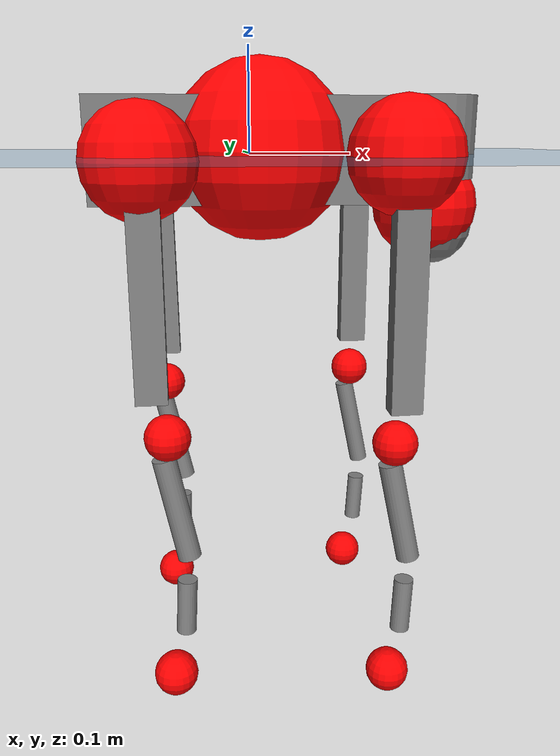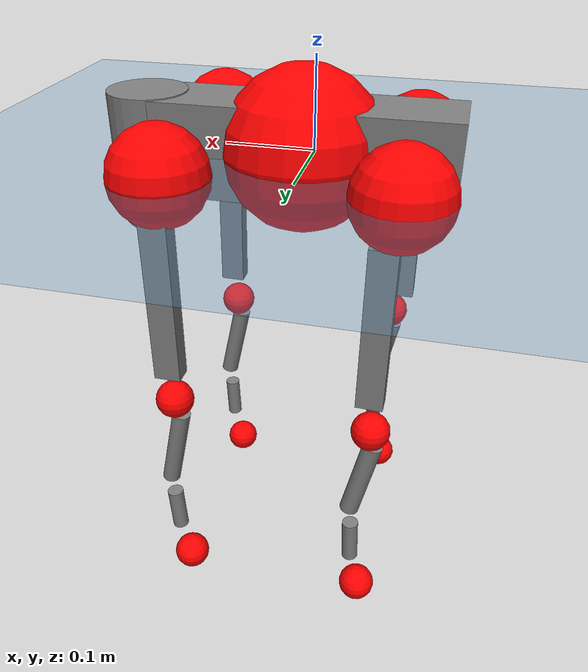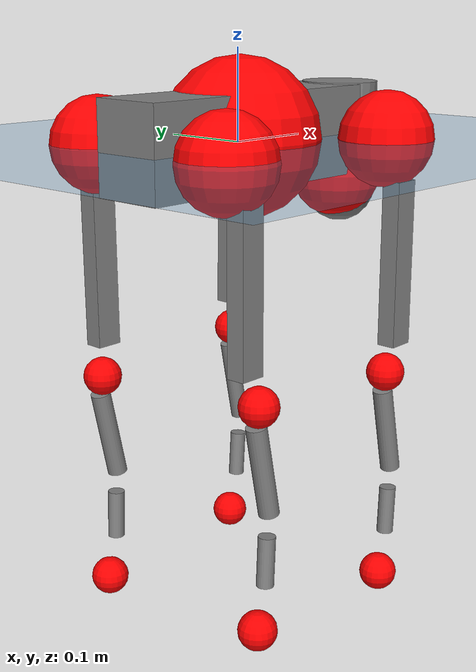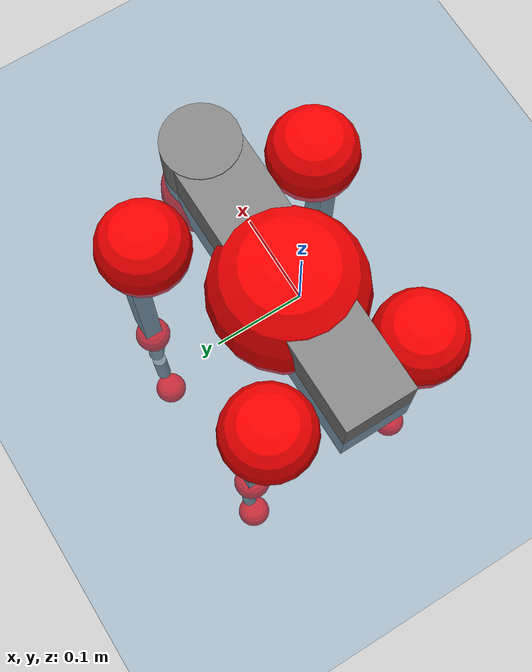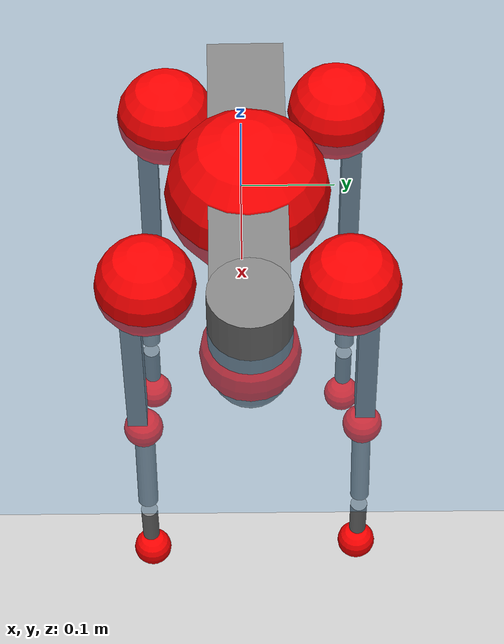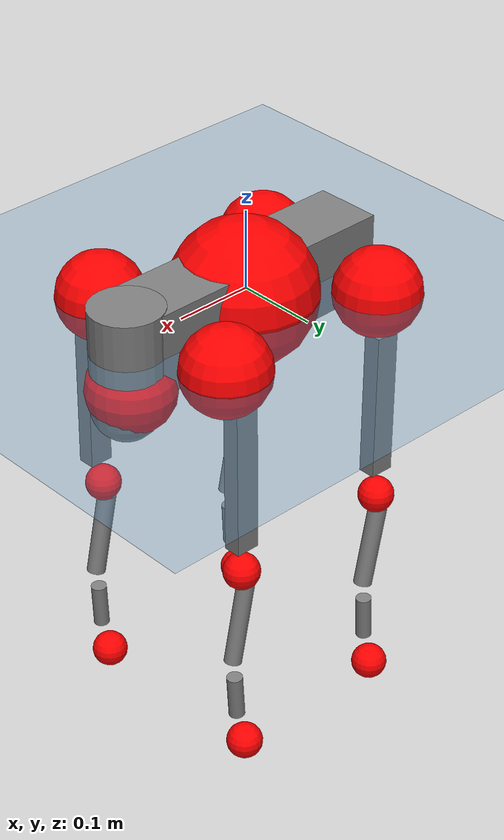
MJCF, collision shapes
<mujoco model="go2">
  <compiler angle="radian" assetdir="assets" balanceinertia="true" inertiafromgeom="false"/>

  <option timestep="0.005" density="1.2" viscosity="2e-05"/>

  <size nkey="1"/>

  <visual>
    <quality shadowsize="8192"/>
    <map shadowclip="0.5"/>
  </visual>

  <default>
    <default class="/">
      <geom contype="0" conaffinity="0" group="1" solref="-1000 -80"/>
      <site size="0.01 0.005 0.005" group="5"/>
      <general forcelimited="true" biastype="affine" gainprm="20" biasprm="0 -20 -0.5"/>
      <default class="go2">
        <joint armature="0.01" damping="0.01" frictionloss="0.2"/>
        <geom condim="1" margin="0.001"/>
        <default class="visual">
          <geom type="mesh" group="2"/>
        </default>
        <default class="collision">
          <geom group="3"/>
          <default class="foot">
            <geom size="0.022 0 0" condim="6" priority="1" friction="0.8 0.02 0.01" solimp="0.015 1 0.022"/>
          </default>
        </default>
        <default class="reward_collision_sphere">
          <geom group="5" rgba="1 0 0 1"/>
        </default>
      </default>
    </default>
  </default>

  <asset>
    <texture type="skybox" colorspace="auto" name="//unnamed_texture_0" builtin="gradient" rgb1="0.95 0.95 0.95" rgb2="0.95 0.95 0.95" width="100" height="600"/>
    <texture type="2d" colorspace="auto" name="texplane" builtin="checker" rgb1="0.345 0.575 0.748" rgb2="0.345 0.575 0.748" markrgb="1 1 1" width="512" height="512"/>
    <material name="MatPlane" class="/" texture="texplane" texuniform="true" texrepeat="2 2" specular="0.9"/>
    <material name="metal" class="/" rgba="0.9 0.95 0.95 1"/>
    <material name="black" class="/" rgba="0 0 0 1"/>
    <material name="white" class="/"/>
    <material name="gray" class="/" rgba="0.671705 0.692426 0.77427 1"/>
    <mesh name="base_0" class="/" file="base_0.obj"/>
    <mesh name="base_1" class="/" file="base_1.obj"/>
    <mesh name="base_2" class="/" file="base_2.obj"/>
    <mesh name="base_3" class="/" file="base_3.obj"/>
    <mesh name="base_4" class="/" file="base_4.obj"/>
    <mesh name="hip_0" class="/" file="hip_0.obj"/>
    <mesh name="hip_1" class="/" file="hip_1.obj"/>
    <mesh name="thigh_0" class="/" file="thigh_0.obj"/>
    <mesh name="thigh_1" class="/" file="thigh_1.obj"/>
    <mesh name="thigh_mirror_0" class="/" file="thigh_mirror_0.obj"/>
    <mesh name="thigh_mirror_1" class="/" file="thigh_mirror_1.obj"/>
    <mesh name="calf_0" class="/" file="calf_0.obj"/>
    <mesh name="calf_1" class="/" file="calf_1.obj"/>
    <mesh name="calf_mirror_0" class="/" file="calf_mirror_0.obj"/>
    <mesh name="calf_mirror_1" class="/" file="calf_mirror_1.obj"/>
    <mesh name="foot" class="/" file="foot.obj"/>
  </asset>

  <worldbody>
    <geom name="floor" class="/" size="100 100 0.125" type="plane" group="0" material="MatPlane"/>
    <light name="toplight_shadow" class="/" pos="0 0 5" dir="0.0990148 0.0990148 -0.990148" type="directional" ambient="0.04 0.04 0.04" diffuse="0.55 0.55 0.55" specular="0.12 0.12 0.12"/>
    <light name="toplight_fill" class="/" pos="0 0 5" dir="0.0990148 0.0990148 -0.990148" type="directional" castshadow="false" ambient="0.04 0.04 0.04" diffuse="0.3 0.3 0.3" specular="0.08 0.08 0.08"/>
    <body name="trunk" childclass="go2" pos="0.0109813 0.00682597 0.00300447" quat="0.999991 0.00309785 0.000185254 0.00280641">
      <inertial pos="0.024537 -0.000665846 -0.00755648" quat="-0.0109214 0.716608 0.00725845 0.697353" mass="4.7084" diaginertia="0.00898632 0.0436695 0.0565786"/>
      <joint name="//unnamed_joint_0" type="free" armature="0" damping="0" frictionloss="0"/>
      <geom name="//unnamed_geom_1" class="visual" material="black" mesh="base_0"/>
      <geom name="//unnamed_geom_2" class="visual" material="black" mesh="base_1"/>
      <geom name="//unnamed_geom_3" class="visual" material="black" mesh="base_2"/>
      <geom name="//unnamed_geom_4" class="visual" material="white" mesh="base_3"/>
      <geom name="//unnamed_geom_5" class="visual" material="gray" mesh="base_4"/>
      <geom name="trunk_1" class="collision" size="0.168032 0.0417624 0.0509189" type="box"/>
      <geom name="trunk_2" class="collision" size="0.0446657 0.0401991" pos="0.173727 0 0.0121827" type="cylinder"/>
      <geom name="trunk_3" class="collision" size="0.0419857" pos="0.178604 0 -0.0730962"/>
      <geom name="//unnamed_geom_9" class="reward_collision_sphere" size="0.0893313"/>
      <geom name="//unnamed_geom_10" class="reward_collision_sphere" size="0.0535988" pos="0.17068 0 -0.0548222"/>
      <site name="imu" pos="-0.00758777 -0.013274 0.0590183" size="0.00893313"/>
      <camera name="track" pos="0 -1.7042 0" quat="0.707107 0.707107 0 0" mode="trackcom"/>
      <camera name="ego_camera" pos="0.190186 0 0.0548222" quat="-0.5 -0.5 0.5 0.5"/>
      <body name="FL_hip" pos="0.123626 0.0455737 -0.00322309" quat="0.999985 0.00263127 -6.56538e-05 -0.00480783">
        <inertial pos="0.0086162 0.00634702 0.00464556" quat="0.494446 0.494948 0.508344 0.502131" mass="0.424573" diaginertia="6.56747e-05 0.000267079 0.00106801"/>
        <joint name="FL_hip_joint" pos="0 0 0" axis="0.999998 -0.000545803 -0.00185803" stiffness="0.0208904" range="-1.07028 1.23067" armature="0.0055066" damping="0.039137" frictionloss="0.148435"/>
        <geom name="//unnamed_geom_11" class="visual" material="metal" mesh="hip_0"/>
        <geom name="//unnamed_geom_12" class="visual" material="gray" mesh="hip_1"/>
        <geom name="//unnamed_geom_13" class="collision" size="0.0410924 0.0178663" pos="0 0.068168 0" quat="0.707107 0.707107 0 0" type="cylinder"/>
        <geom name="//unnamed_geom_14" class="reward_collision_sphere" size="0.0535988" pos="0 0.059647 0"/>
        <body name="FL_thigh" pos="-0.00130611 0.080484 -0.00279104" quat="0.999999 0.000683858 -0.00066853 0.000310988">
          <inertial pos="-0.013208 -0.0180942 -0.0495581" quat="0.828112 0.0883324 -0.0156035 0.55334" mass="0.847644" diaginertia="0.000502993 0.00262089 0.00248539"/>
          <joint name="FL_thigh_joint" pos="0 0 0" axis="-0.0209014 0.999722 0.0109046" range="-1.4018 3.33596" armature="0.00555315" damping="0.0621597" frictionloss="0.14024"/>
          <geom name="//unnamed_geom_15" class="visual" material="metal" mesh="thigh_0"/>
          <geom name="//unnamed_geom_16" class="visual" material="gray" mesh="thigh_1"/>
          <geom name="//unnamed_geom_17" class="collision" size="0.0951379 0.0109431 0.0151863" pos="0 0 -0.129746" quat="0.707107 0 0.707107 0" type="box"/>
          <body name="FL_calf" pos="-0.00133097 -0.00169787 -0.260833" quat="0.999995 -0.000775323 0.00287719 0.000794817">
            <inertial pos="-0.0016079 -0.0051507 -0.164829" quat="0.71247 -0.0289545 0.0316451 0.70039" mass="0.167541" diaginertia="0.00012803 0.000617127 0.000152973"/>
            <joint name="FL_calf_joint" pos="0 0 0" axis="-0.0115842 0.999901 -0.0079505" stiffness="0.0049947" range="-2.74741 -0.661425" armature="0.0113713" damping="0.00299445" frictionloss="0.175494"/>
            <geom name="//unnamed_geom_18" class="visual" material="gray" mesh="calf_0"/>
            <geom name="//unnamed_geom_19" class="visual" material="black" mesh="calf_1"/>
            <geom name="FL_calf0" class="collision" size="0.0107198 0.0535988" pos="0.00487656 0 -0.0730962" quat="0.994493 0 -0.104807 0" type="cylinder"/>
            <geom name="//unnamed_geom_21" class="collision" size="0.00982645 0.0290327" pos="0.0121914 0 -0.180304" quat="0.999688 0 0.0249974 0" type="cylinder"/>
            <geom name="//unnamed_geom_22" class="visual" pos="0 0 -0.259492" quat="1 0 0 0" material="black" mesh="foot"/>
            <geom name="FL_foot" class="foot" size="0.0191375" pos="-0.00121914 0 -0.259492"/>
            <geom name="//unnamed_geom_24" class="reward_collision_sphere" size="0.0223328"/>
            <geom name="//unnamed_geom_25" class="reward_collision_sphere" size="0.0223328" pos="-0.00121914 0 -0.259492"/>
            <site name="FL_foot" class="foot" pos="-0.00121914 0 -0.259492" size="0.00893313"/>
          </body>
        </body>
      </body>
      <body name="FR_hip" pos="0.120873 -0.0486289 -0.00223983" quat="0.999998 0.00109465 -0.00147543 0.000610118">
        <inertial pos="-0.0113689 -0.00306552 -0.000456068" quat="0.495753 0.505757 0.505052 0.493316" mass="0.370491" diaginertia="6.80035e-05 0.000247357 0.00126717"/>
        <joint name="FR_hip_joint" pos="0 0 0" axis="0.999981 0.00285373 0.00537373" stiffness="0.0529981" range="-1.15073 1.06261" armature="0.0140119" damping="0.00155413" frictionloss="0.0787804"/>
        <geom name="//unnamed_geom_26" class="visual" pos="0 -3.18992e-09 -1.36822e-07" quat="4.63268e-05 1 0 0" material="metal" mesh="hip_0"/>
        <geom name="//unnamed_geom_27" class="visual" pos="0 -5.17124e-09 3.38414e-07" quat="4.63268e-05 1 0 0" material="gray" mesh="hip_1"/>
        <geom name="//unnamed_geom_28" class="collision" size="0.0410924 0.0178663" pos="0 -0.068168 0" quat="0.707107 0.707107 0 0" type="cylinder"/>
        <geom name="//unnamed_geom_29" class="reward_collision_sphere" size="0.0535988" pos="0 -0.059647 0"/>
        <body name="FR_thigh" pos="0.001469 -0.0781681 -0.00973099" quat="0.999986 -0.000254568 -0.00518873 0.00100151">
          <inertial pos="0.0048788 0.0307094 -0.0381753" quat="0.551657 -0.0217611 0.084365 0.829508" mass="0.975923" diaginertia="0.000526717 0.00283178 0.00268786"/>
          <joint name="FR_thigh_joint" pos="0 0 0" axis="0.000288166 -1 0.000545055" range="-3.45382 1.62598" armature="0.00926589" damping="0" frictionloss="0.147899"/>
          <geom name="//unnamed_geom_30" class="visual" material="metal" mesh="thigh_mirror_0"/>
          <geom name="//unnamed_geom_31" class="visual" material="gray" mesh="thigh_mirror_1"/>
          <geom name="//unnamed_geom_32" class="collision" size="0.0951379 0.0109431 0.0151863" pos="0 0 -0.129746" quat="0.707107 0 0.707107 0" type="box"/>
          <body name="FR_calf" pos="-0.00628439 0.00506969 -0.259135" quat="1 4.96081e-05 -0.000166494 -0.00027835">
            <inertial pos="-0.000805895 0.000459586 -0.170831" quat="0.703639 -0.00608496 0.00176804 0.71053" mass="0.150916" diaginertia="9.93487e-05 0.000639312 0.000129682"/>
            <joint name="FR_calf_joint" pos="0 0 0" axis="-0.0176276 -0.999135 -0.0376558" stiffness="0.0261422" range="0.851427 2.71002" armature="0.00948058" damping="0" frictionloss="0.167842"/>
            <geom name="//unnamed_geom_33" class="visual" material="gray" mesh="calf_mirror_0"/>
            <geom name="//unnamed_geom_34" class="visual" material="black" mesh="calf_mirror_1"/>
            <geom name="FR_calf0" class="collision" size="0.0116131 0.0535988" pos="0.0060957 0 -0.0730962" quat="0.995004 0 -0.0998334 0" type="cylinder"/>
            <geom name="//unnamed_geom_36" class="collision" size="0.00982645 0.0290327" pos="0.0121914 0 -0.180304" quat="0.999688 0 0.0249974 0" type="cylinder"/>
            <geom name="//unnamed_geom_37" class="visual" pos="0 0 -0.259492" quat="1 0 0 0" material="black" mesh="foot"/>
            <geom name="FR_foot" class="foot" size="0.0167887" pos="-0.00121914 0 -0.259492"/>
            <geom name="//unnamed_geom_39" class="reward_collision_sphere" size="0.0223328"/>
            <geom name="//unnamed_geom_40" class="reward_collision_sphere" size="0.0223328" pos="-0.00121914 0 -0.259492"/>
            <site name="FR_foot" class="foot" pos="-0.00121914 0 -0.259492" size="0.00893313"/>
          </body>
        </body>
      </body>
      <body name="RL_hip" pos="-0.11799 0.0395203 -0.00520152" quat="0.99998 -0.00208531 -0.00470861 -0.00378705">
        <inertial pos="-0.00768081 0.00258613 0.000712517" quat="0.504798 0.497053 0.49876 0.499356" mass="0.486821" diaginertia="7.52863e-05 0.000247731 0.0013323"/>
        <joint name="RL_hip_joint" pos="0 0 0" axis="-0.999977 -0.000445148 -0.00678472" range="-1.04366 1.05488" armature="0.00865975" damping="0" frictionloss="0.152646"/>
        <geom name="//unnamed_geom_41" class="visual" pos="5.30274e-09 0 1.03946e-06" quat="4.63268e-05 0 1 0" material="metal" mesh="hip_0"/>
        <geom name="//unnamed_geom_42" class="visual" pos="8.59638e-09 0 9.21853e-07" quat="4.63268e-05 0 1 0" material="gray" mesh="hip_1"/>
        <geom name="//unnamed_geom_43" class="collision" size="0.0410924 0.0178663" pos="0 0.068168 0" quat="0.707107 0.707107 0 0" type="cylinder"/>
        <geom name="//unnamed_geom_44" class="reward_collision_sphere" size="0.0535988" pos="0 0.059647 0"/>
        <body name="RL_thigh" pos="0.0103261 0.0779112 -0.00717429" quat="0.999986 0.00340836 -0.00243006 -0.00319027">
          <inertial pos="-0.00413143 -0.0186887 -0.0396827" quat="0.820365 0.110771 -0.0574296 0.558062" mass="0.914979" diaginertia="0.000492373 0.00289687 0.00230048"/>
          <joint name="RL_thigh_joint" pos="0 0 0" axis="0.00346481 0.999929 -0.0113606" stiffness="0.00988714" range="-0.52738 4.47926" armature="0.0114721" damping="0.062336" frictionloss="0.200942"/>
          <geom name="//unnamed_geom_45" class="visual" material="metal" mesh="thigh_0"/>
          <geom name="//unnamed_geom_46" class="visual" material="gray" mesh="thigh_1"/>
          <geom name="//unnamed_geom_47" class="collision" size="0.0951379 0.0109431 0.0151863" pos="0 0 -0.129746" quat="0.707107 0 0.707107 0" type="box"/>
          <body name="RL_calf" pos="-0.00361867 3.82759e-05 -0.263634" quat="1 0.000328594 -0.000226296 0.000374385">
            <inertial pos="0.00409736 0.000439664 -0.177499" quat="0.711397 0.00320131 -0.00244949 0.702779" mass="0.171545" diaginertia="0.000125697 0.00068201 0.000142643"/>
            <joint name="RL_calf_joint" pos="0 0 0" axis="-0.0145332 0.999875 0.00620361" range="-2.69782 -0.835389" armature="0.0109624" damping="0.0541808" frictionloss="0.164144"/>
            <geom name="//unnamed_geom_48" class="visual" material="gray" mesh="calf_0"/>
            <geom name="//unnamed_geom_49" class="visual" material="black" mesh="calf_1"/>
            <geom name="RL_calf0" class="collision" size="0.0116131 0.0535988" pos="0.0060957 0 -0.0730962" quat="0.995004 0 -0.0998334 0" type="cylinder"/>
            <geom name="//unnamed_geom_51" class="collision" size="0.00982645 0.0290327" pos="0.0121914 0 -0.180304" quat="0.999688 0 0.0249974 0" type="cylinder"/>
            <geom name="//unnamed_geom_52" class="visual" pos="0 0 -0.259492" quat="1 0 0 0" material="black" mesh="foot"/>
            <geom name="RL_foot" class="foot" size="0.014811" pos="-0.00121914 0 -0.259492"/>
            <geom name="//unnamed_geom_54" class="reward_collision_sphere" size="0.0223328"/>
            <geom name="//unnamed_geom_55" class="reward_collision_sphere" size="0.0223328" pos="-0.00121914 0 -0.259492"/>
            <site name="RL_foot" class="foot" pos="-0.00121914 0 -0.259492" size="0.00893313"/>
          </body>
        </body>
      </body>
      <body name="RR_hip" pos="-0.115688 -0.0289974 -0.00800881" quat="0.999994 -0.00191379 -0.000833178 0.00277333">
        <inertial pos="0.00251838 -0.00978456 -0.000258067" quat="0.468958 0.476878 0.518341 0.532906" mass="0.471217" diaginertia="6.80593e-05 0.000242808 0.00131103"/>
        <joint name="RR_hip_joint" pos="0 0 0" axis="-1 0.000403127 0.000878136" range="-1.04757 1.04383" armature="0.00359442" damping="0" frictionloss="0.261441"/>
        <geom name="//unnamed_geom_56" class="visual" pos="-5.29435e-09 -3.18992e-09 1.17628e-06" quat="2.14617e-09 4.63268e-05 4.63268e-05 -1" material="metal" mesh="hip_0"/>
        <geom name="//unnamed_geom_57" class="visual" pos="-8.61715e-09 -5.17124e-09 5.83439e-07" quat="2.14617e-09 4.63268e-05 4.63268e-05 -1" material="gray" mesh="hip_1"/>
        <geom name="//unnamed_geom_58" class="collision" size="0.0410924 0.0178663" pos="0 -0.068168 0" quat="0.707107 0.707107 0 0" type="cylinder"/>
        <geom name="//unnamed_geom_59" class="reward_collision_sphere" size="0.0535988" pos="0 -0.059647 0"/>
        <body name="RR_thigh" pos="0.00295584 -0.0810176 0.00863295" quat="0.999998 -0.00167155 0.000747476 0.000600822">
          <inertial pos="-0.00284497 0.0231868 -0.038456" quat="0.552606 -0.014074 0.0858402 0.828891" mass="0.893547" diaginertia="0.000539573 0.00266892 0.00274332"/>
          <joint name="RR_thigh_joint" pos="0 0 0" axis="0.00273269 -0.998539 -0.0539639" stiffness="0.0325338" range="-4.33793 0.410505" armature="0.00689113" damping="0.0107839" frictionloss="0.190984"/>
          <geom name="//unnamed_geom_60" class="visual" material="metal" mesh="thigh_mirror_0"/>
          <geom name="//unnamed_geom_61" class="visual" material="gray" mesh="thigh_mirror_1"/>
          <geom name="//unnamed_geom_62" class="collision" size="0.0951379 0.0109431 0.0151863" pos="0 0 -0.129746" quat="0.707107 0 0.707107 0" type="box"/>
          <body name="RR_calf" pos="0.0131152 -0.00732517 -0.25843" quat="1 6.6999e-05 4.42904e-05 -0.000105083">
            <inertial pos="-0.00846697 -0.000822807 -0.177256" quat="0.701342 -0.00068557 0.015752 0.71265" mass="0.167288" diaginertia="0.000134337 0.000817975 0.000149823"/>
            <joint name="RR_calf_joint" pos="0 0 0" axis="0.000707611 -0.999998 0.00185719" stiffness="0.0024175" range="0.694291 2.47084" armature="0.0128508" damping="0.00938888" frictionloss="0.164764"/>
            <geom name="//unnamed_geom_63" class="visual" material="gray" mesh="calf_mirror_0"/>
            <geom name="//unnamed_geom_64" class="visual" material="black" mesh="calf_mirror_1"/>
            <geom name="RR_calf0" class="collision" size="0.0116131 0.0535988" pos="0.0060957 0 -0.0730962" quat="0.995004 0 -0.0998334 0" type="cylinder"/>
            <geom name="//unnamed_geom_66" class="collision" size="0.00982645 0.0290327" pos="0.0121914 0 -0.180304" quat="0.999688 0 0.0249974 0" type="cylinder"/>
            <geom name="//unnamed_geom_67" class="visual" pos="0 0 -0.259492" quat="1 0 0 0" material="black" mesh="foot"/>
            <geom name="RR_foot" class="foot" size="0.0189291" pos="-0.00121914 0 -0.259492"/>
            <geom name="//unnamed_geom_69" class="reward_collision_sphere" size="0.0223328"/>
            <geom name="//unnamed_geom_70" class="reward_collision_sphere" size="0.0223328" pos="-0.00121914 0 -0.259492"/>
            <site name="RR_foot" class="foot" pos="-0.00121914 0 -0.259492" size="0.00893313"/>
          </body>
        </body>
      </body>
    </body>
  </worldbody>

  <contact>
    <pair class="/" geom1="floor" geom2="FL_foot" name="//unnamed_contact_0"/>
    <pair class="/" geom1="floor" geom2="FR_foot" name="//unnamed_contact_1"/>
    <pair class="/" geom1="floor" geom2="RL_foot" name="//unnamed_contact_2"/>
    <pair class="/" geom1="floor" geom2="RR_foot" name="//unnamed_contact_3"/>
  </contact>

  <actuator>
    <general name="FL_hip" class="/" joint="FL_hip_joint" forcerange="-20.0258 20.0258" gainprm="17.8864" biasprm="0 -17.8864 -0.443755"/>
    <general name="FL_thigh" class="/" joint="FL_thigh_joint" forcerange="-24.8423 24.8423" gainprm="17.8864" biasprm="0 -17.8864 -0.443755"/>
    <general name="FL_calf" class="/" joint="FL_calf_joint" forcerange="-41.1074 41.1074" gainprm="17.8864" biasprm="0 -17.8864 -0.443755"/>
    <general name="FR_hip" class="/" joint="FR_hip_joint" forcerange="-11.6347 11.6347" gainprm="17.8864" biasprm="0 -17.8864 -0.443755"/>
    <general name="FR_thigh" class="/" joint="FR_thigh_joint" forcerange="-20.8172 20.8172" gainprm="17.8864" biasprm="0 -17.8864 -0.443755"/>
    <general name="FR_calf" class="/" joint="FR_calf_joint" forcerange="-51.9177 51.9177" gainprm="17.8864" biasprm="0 -17.8864 -0.443755"/>
    <general name="RL_hip" class="/" joint="RL_hip_joint" forcerange="-20.6527 20.6527" gainprm="17.8864" biasprm="0 -17.8864 -0.443755"/>
    <general name="RL_thigh" class="/" joint="RL_thigh_joint" forcerange="-20.7912 20.7912" gainprm="17.8864" biasprm="0 -17.8864 -0.443755"/>
    <general name="RL_calf" class="/" joint="RL_calf_joint" forcerange="-43.4936 43.4936" gainprm="17.8864" biasprm="0 -17.8864 -0.443755"/>
    <general name="RR_hip" class="/" joint="RR_hip_joint" forcerange="-21.6945 21.6945" gainprm="17.8864" biasprm="0 -17.8864 -0.443755"/>
    <general name="RR_thigh" class="/" joint="RR_thigh_joint" forcerange="-22.8088 22.8088" gainprm="17.8864" biasprm="0 -17.8864 -0.443755"/>
    <general name="RR_calf" class="/" joint="RR_calf_joint" forcerange="-25.3405 25.3405" gainprm="17.8864" biasprm="0 -17.8864 -0.443755"/>
  </actuator>

  <sensor>
    <gyro site="imu" name="imu_angular_velocity"/>
    <velocimeter site="imu" name="imu_linear_velocity"/>
    <framelinvel objtype="site" objname="FL_foot" name="FL_foot_global_linear_velocity"/>
    <framelinvel objtype="site" objname="FR_foot" name="FR_foot_global_linear_velocity"/>
    <framelinvel objtype="site" objname="RL_foot" name="RL_foot_global_linear_velocity"/>
    <framelinvel objtype="site" objname="RR_foot" name="RR_foot_global_linear_velocity"/>
  </sensor>

  <keyframe>
    <key name="home" qpos="0 0 0.325 1 0 0 0 0.1 0.8 -1.5 -0.1 -0.8 1.5 -0.1 0.8 -1.5 0.1 -0.8 1.5"/>
  </keyframe>
</mujoco>
